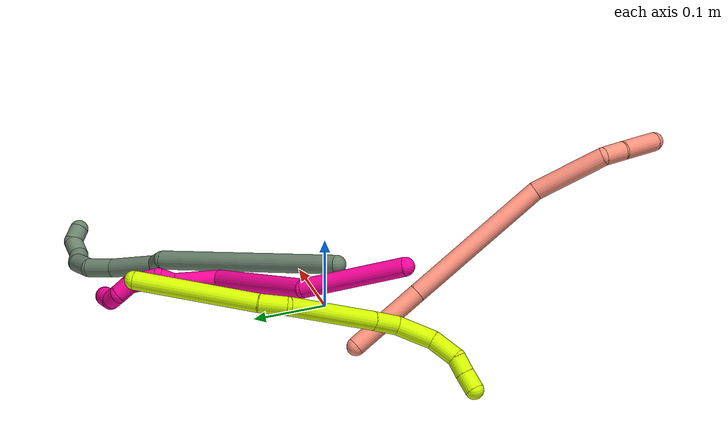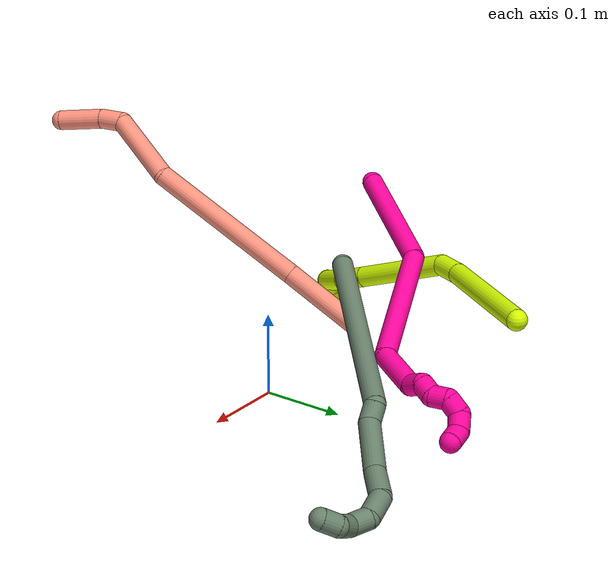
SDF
<sdf version="1.7">
 <world name="default">
  <model name="15">
   <static>0</static>
   <link name="15">
    <collision name="collision-cylinder-e_1_1_4">
     <pose>-0.044882 -0.068134 -0.017127 1.81707 -0.568495 -0.716998</pose>
     <geometry><cylinder><radius>0.0125</radius><length>0.166733</length></cylinder></geometry>
     <surface>
      <friction><ode><mu>1.16</mu><mu2>1.16</mu2><slip1>0</slip1><slip2>0</slip2></ode></friction>
      <contact><ode><kp>1e+06</kp><kd>1</kd><max_vel>0</max_vel><min_depth>0.001</min_depth></ode></contact>
     </surface>
    </collision>
    <visual name="visual-cylinder-e_1_1_4">
     <pose>-0.044882 -0.068134 -0.017127 1.81707 -0.568495 -0.716998</pose>
     <geometry><cylinder><radius>0.0125</radius><length>0.166733</length></cylinder></geometry>
     <material><ambient>0.835294 1 0 1</ambient></material>
    </visual>
    <collision name="collision-cylinder-e_2_4_5">
     <pose>-0.097491 -0.153049 -0.038029 1.79204 -0.422286 -0.523511</pose>
     <geometry><cylinder><radius>0.0125</radius><length>0.037713</length></cylinder></geometry>
     <surface>
      <friction><ode><mu>1.16</mu><mu2>1.16</mu2><slip1>0</slip1><slip2>0</slip2></ode></friction>
      <contact><ode><kp>1e+06</kp><kd>1</kd><max_vel>0</max_vel><min_depth>0.001</min_depth></ode></contact>
     </surface>
    </collision>
    <visual name="visual-cylinder-e_2_4_5">
     <pose>-0.097491 -0.153049 -0.038029 1.79204 -0.422286 -0.523511</pose>
     <geometry><cylinder><radius>0.0125</radius><length>0.037713</length></cylinder></geometry>
     <material><ambient>0.835294 1 0 1</ambient></material>
    </visual>
    <collision name="collision-cylinder-e_3_5_6">
     <pose>-0.102705 -0.224679 -0.069648 2.04055 0.040868 0.066565</pose>
     <geometry><cylinder><radius>0.0125</radius><length>0.123126</length></cylinder></geometry>
     <surface>
      <friction><ode><mu>1.16</mu><mu2>1.16</mu2><slip1>0</slip1><slip2>0</slip2></ode></friction>
      <contact><ode><kp>1e+06</kp><kd>1</kd><max_vel>0</max_vel><min_depth>0.001</min_depth></ode></contact>
     </surface>
    </collision>
    <visual name="visual-cylinder-e_3_5_6">
     <pose>-0.102705 -0.224679 -0.069648 2.04055 0.040868 0.066565</pose>
     <geometry><cylinder><radius>0.0125</radius><length>0.123126</length></cylinder></geometry>
     <material><ambient>0.835294 1 0 1</ambient></material>
    </visual>
    <collision name="collision-cylinder-e_4_6_7">
     <pose>-0.099777 -0.294802 -0.105503 2.05381 0.023898 0.039515</pose>
     <geometry><cylinder><radius>0.0125</radius><length>0.034506</length></cylinder></geometry>
     <surface>
      <friction><ode><mu>1.16</mu><mu2>1.16</mu2><slip1>0</slip1><slip2>0</slip2></ode></friction>
      <contact><ode><kp>1e+06</kp><kd>1</kd><max_vel>0</max_vel><min_depth>0.001</min_depth></ode></contact>
     </surface>
    </collision>
    <visual name="visual-cylinder-e_4_6_7">
     <pose>-0.099777 -0.294802 -0.105503 2.05381 0.023898 0.039515</pose>
     <geometry><cylinder><radius>0.0125</radius><length>0.034506</length></cylinder></geometry>
     <material><ambient>0.835294 1 0 1</ambient></material>
    </visual>
    <collision name="collision-cylinder-e_5_7_8">
     <pose>-0.109259 -0.329858 -0.125738 2.12433 -0.402293 -0.701194</pose>
     <geometry><cylinder><radius>0.0125</radius><length>0.050541</length></cylinder></geometry>
     <surface>
      <friction><ode><mu>1.16</mu><mu2>1.16</mu2><slip1>0</slip1><slip2>0</slip2></ode></friction>
      <contact><ode><kp>1e+06</kp><kd>1</kd><max_vel>0</max_vel><min_depth>0.001</min_depth></ode></contact>
     </surface>
    </collision>
    <visual name="visual-cylinder-e_5_7_8">
     <pose>-0.109259 -0.329858 -0.125738 2.12433 -0.402293 -0.701194</pose>
     <geometry><cylinder><radius>0.0125</radius><length>0.050541</length></cylinder></geometry>
     <material><ambient>0.835294 1 0 1</ambient></material>
    </visual>
    <collision name="collision-cylinder-e_6_8_9">
     <pose>-0.132841 -0.359412 -0.147771 2.35799 -0.779633 -1.56517</pose>
     <geometry><cylinder><radius>0.0125</radius><length>0.03894</length></cylinder></geometry>
     <surface>
      <friction><ode><mu>1.16</mu><mu2>1.16</mu2><slip1>0</slip1><slip2>0</slip2></ode></friction>
      <contact><ode><kp>1e+06</kp><kd>1</kd><max_vel>0</max_vel><min_depth>0.001</min_depth></ode></contact>
     </surface>
    </collision>
    <visual name="visual-cylinder-e_6_8_9">
     <pose>-0.132841 -0.359412 -0.147771 2.35799 -0.779633 -1.56517</pose>
     <geometry><cylinder><radius>0.0125</radius><length>0.03894</length></cylinder></geometry>
     <material><ambient>0.835294 1 0 1</ambient></material>
    </visual>
    <collision name="collision-cylinder-e_7_9_10">
     <pose>-0.154232 -0.371129 -0.166552 2.92823 -0.698146 -2.56931</pose>
     <geometry><cylinder><radius>0.0125</radius><length>0.023969</length></cylinder></geometry>
     <surface>
      <friction><ode><mu>1.16</mu><mu2>1.16</mu2><slip1>0</slip1><slip2>0</slip2></ode></friction>
      <contact><ode><kp>1e+06</kp><kd>1</kd><max_vel>0</max_vel><min_depth>0.001</min_depth></ode></contact>
     </surface>
    </collision>
    <visual name="visual-cylinder-e_7_9_10">
     <pose>-0.154232 -0.371129 -0.166552 2.92823 -0.698146 -2.56931</pose>
     <geometry><cylinder><radius>0.0125</radius><length>0.023969</length></cylinder></geometry>
     <material><ambient>0.835294 1 0 1</ambient></material>
    </visual>
    <collision name="collision-cylinder-e_8_10_2">
     <pose>-0.170116 -0.375466 -0.184304 2.87556 -0.732272 -2.47007</pose>
     <geometry><cylinder><radius>0.0125</radius><length>0.024471</length></cylinder></geometry>
     <surface>
      <friction><ode><mu>1.16</mu><mu2>1.16</mu2><slip1>0</slip1><slip2>0</slip2></ode></friction>
      <contact><ode><kp>1e+06</kp><kd>1</kd><max_vel>0</max_vel><min_depth>0.001</min_depth></ode></contact>
     </surface>
    </collision>
    <visual name="visual-cylinder-e_8_10_2">
     <pose>-0.170116 -0.375466 -0.184304 2.87556 -0.732272 -2.47007</pose>
     <geometry><cylinder><radius>0.0125</radius><length>0.024471</length></cylinder></geometry>
     <material><ambient>0.835294 1 0 1</ambient></material>
    </visual>
    <collision name="collision-sphere-2">
     <pose>-0.178297 -0.377858 -0.193082 0 -0 0</pose>
     <geometry><sphere><radius>0.0125</radius></sphere></geometry>
     <surface>
      <friction><ode><mu>1.16</mu><mu2>1.16</mu2><slip1>0</slip1><slip2>0</slip2></ode></friction>
      <contact><ode><kp>1e+06</kp><kd>1</kd><max_vel>0</max_vel><min_depth>0.001</min_depth></ode></contact>
     </surface>
    </collision>
    <visual name="visual-sphere-2">
     <pose>-0.178297 -0.377858 -0.193082 0 -0 0</pose>
     <geometry><sphere><radius>0.0125</radius></sphere></geometry>
     <material><ambient>0.835294 1 0 1</ambient></material>
    </visual>
    <collision name="collision-sphere-10">
     <pose>-0.161936 -0.373073 -0.175525 0 -0 0</pose>
     <geometry><sphere><radius>0.0125</radius></sphere></geometry>
     <surface>
      <friction><ode><mu>1.16</mu><mu2>1.16</mu2><slip1>0</slip1><slip2>0</slip2></ode></friction>
      <contact><ode><kp>1e+06</kp><kd>1</kd><max_vel>0</max_vel><min_depth>0.001</min_depth></ode></contact>
     </surface>
    </collision>
    <visual name="visual-sphere-10">
     <pose>-0.161936 -0.373073 -0.175525 0 -0 0</pose>
     <geometry><sphere><radius>0.0125</radius></sphere></geometry>
     <material><ambient>0.835294 1 0 1</ambient></material>
    </visual>
    <collision name="collision-sphere-9">
     <pose>-0.146529 -0.369185 -0.157579 0 -0 0</pose>
     <geometry><sphere><radius>0.0125</radius></sphere></geometry>
     <surface>
      <friction><ode><mu>1.16</mu><mu2>1.16</mu2><slip1>0</slip1><slip2>0</slip2></ode></friction>
      <contact><ode><kp>1e+06</kp><kd>1</kd><max_vel>0</max_vel><min_depth>0.001</min_depth></ode></contact>
     </surface>
    </collision>
    <visual name="visual-sphere-9">
     <pose>-0.146529 -0.369185 -0.157579 0 -0 0</pose>
     <geometry><sphere><radius>0.0125</radius></sphere></geometry>
     <material><ambient>0.835294 1 0 1</ambient></material>
    </visual>
    <collision name="collision-sphere-4">
     <pose>-0.089763 -0.136268 -0.034255 0 -0 0</pose>
     <geometry><sphere><radius>0.0125</radius></sphere></geometry>
     <surface>
      <friction><ode><mu>1.16</mu><mu2>1.16</mu2><slip1>0</slip1><slip2>0</slip2></ode></friction>
      <contact><ode><kp>1e+06</kp><kd>1</kd><max_vel>0</max_vel><min_depth>0.001</min_depth></ode></contact>
     </surface>
    </collision>
    <visual name="visual-sphere-4">
     <pose>-0.089763 -0.136268 -0.034255 0 -0 0</pose>
     <geometry><sphere><radius>0.0125</radius></sphere></geometry>
     <material><ambient>0.835294 1 0 1</ambient></material>
    </visual>
    <collision name="collision-sphere-1">
     <geometry><sphere><radius>0.0125</radius></sphere></geometry>
     <surface>
      <friction><ode><mu>1.16</mu><mu2>1.16</mu2><slip1>0</slip1><slip2>0</slip2></ode></friction>
      <contact><ode><kp>1e+06</kp><kd>1</kd><max_vel>0</max_vel><min_depth>0.001</min_depth></ode></contact>
     </surface>
    </collision>
    <visual name="visual-sphere-1">
     <geometry><sphere><radius>0.0125</radius></sphere></geometry>
     <material><ambient>0.835294 1 0 1</ambient></material>
    </visual>
    <collision name="collision-sphere-8">
     <pose>-0.119153 -0.349639 -0.137962 0 -0 0</pose>
     <geometry><sphere><radius>0.0125</radius></sphere></geometry>
     <surface>
      <friction><ode><mu>1.16</mu><mu2>1.16</mu2><slip1>0</slip1><slip2>0</slip2></ode></friction>
      <contact><ode><kp>1e+06</kp><kd>1</kd><max_vel>0</max_vel><min_depth>0.001</min_depth></ode></contact>
     </surface>
    </collision>
    <visual name="visual-sphere-8">
     <pose>-0.119153 -0.349639 -0.137962 0 -0 0</pose>
     <geometry><sphere><radius>0.0125</radius></sphere></geometry>
     <material><ambient>0.835294 1 0 1</ambient></material>
    </visual>
    <collision name="collision-sphere-5">
     <pose>-0.10522 -0.16983 -0.041804 0 -0 0</pose>
     <geometry><sphere><radius>0.0125</radius></sphere></geometry>
     <surface>
      <friction><ode><mu>1.16</mu><mu2>1.16</mu2><slip1>0</slip1><slip2>0</slip2></ode></friction>
      <contact><ode><kp>1e+06</kp><kd>1</kd><max_vel>0</max_vel><min_depth>0.001</min_depth></ode></contact>
     </surface>
    </collision>
    <visual name="visual-sphere-5">
     <pose>-0.10522 -0.16983 -0.041804 0 -0 0</pose>
     <geometry><sphere><radius>0.0125</radius></sphere></geometry>
     <material><ambient>0.835294 1 0 1</ambient></material>
    </visual>
    <collision name="collision-sphere-6">
     <pose>-0.100189 -0.279528 -0.097492 0 -0 0</pose>
     <geometry><sphere><radius>0.0125</radius></sphere></geometry>
     <surface>
      <friction><ode><mu>1.16</mu><mu2>1.16</mu2><slip1>0</slip1><slip2>0</slip2></ode></friction>
      <contact><ode><kp>1e+06</kp><kd>1</kd><max_vel>0</max_vel><min_depth>0.001</min_depth></ode></contact>
     </surface>
    </collision>
    <visual name="visual-sphere-6">
     <pose>-0.100189 -0.279528 -0.097492 0 -0 0</pose>
     <geometry><sphere><radius>0.0125</radius></sphere></geometry>
     <material><ambient>0.835294 1 0 1</ambient></material>
    </visual>
    <collision name="collision-sphere-7">
     <pose>-0.099365 -0.310077 -0.113514 0 -0 0</pose>
     <geometry><sphere><radius>0.0125</radius></sphere></geometry>
     <surface>
      <friction><ode><mu>1.16</mu><mu2>1.16</mu2><slip1>0</slip1><slip2>0</slip2></ode></friction>
      <contact><ode><kp>1e+06</kp><kd>1</kd><max_vel>0</max_vel><min_depth>0.001</min_depth></ode></contact>
     </surface>
    </collision>
    <visual name="visual-sphere-7">
     <pose>-0.099365 -0.310077 -0.113514 0 -0 0</pose>
     <geometry><sphere><radius>0.0125</radius></sphere></geometry>
     <material><ambient>0.835294 1 0 1</ambient></material>
    </visual>
    <inertial>
     <pose>-0.091606 -0.207438 -0.074235 0 -0 0</pose>
     <mass>0.5</mass>
     <inertia>
      <ixx>0.000188</ixx>
      <ixy>0</ixy>
      <ixz>0</ixz>
      <iyy>-0.00026</iyy>
      <iyz>0</iyz>
      <izz>0.000692</izz>
     </inertia>
    </inertial>
   </link>
   <pose>-0.073428 0.288515 0.142129 -0.102275 0.119815 -0.032216</pose>
  </model>
  <model name="16">
   <static>0</static>
   <link name="16">
    <collision name="collision-cylinder-e_1_1_4">
     <pose>0.001138 -0.010771 0.051864 0.204763 0.021488 0.002208</pose>
     <geometry><cylinder><radius>0.0125</radius><length>0.105965</length></cylinder></geometry>
     <surface>
      <friction><ode><mu>1.16</mu><mu2>1.16</mu2><slip1>0</slip1><slip2>0</slip2></ode></friction>
      <contact><ode><kp>1e+06</kp><kd>1</kd><max_vel>0</max_vel><min_depth>0.001</min_depth></ode></contact>
     </surface>
    </collision>
    <visual name="visual-cylinder-e_1_1_4">
     <pose>0.001138 -0.010771 0.051864 0.204763 0.021488 0.002208</pose>
     <geometry><cylinder><radius>0.0125</radius><length>0.105965</length></cylinder></geometry>
     <material><ambient>1 0.576471 0.494118 1</ambient></material>
    </visual>
    <collision name="collision-cylinder-e_2_4_5">
     <pose>0.004749 -0.041227 0.205113 0.19178 0.023933 0.002302</pose>
     <geometry><cylinder><radius>0.0125</radius><length>0.206618</length></cylinder></geometry>
     <surface>
      <friction><ode><mu>1.16</mu><mu2>1.16</mu2><slip1>0</slip1><slip2>0</slip2></ode></friction>
      <contact><ode><kp>1e+06</kp><kd>1</kd><max_vel>0</max_vel><min_depth>0.001</min_depth></ode></contact>
     </surface>
    </collision>
    <visual name="visual-cylinder-e_2_4_5">
     <pose>0.004749 -0.041227 0.205113 0.19178 0.023933 0.002302</pose>
     <geometry><cylinder><radius>0.0125</radius><length>0.206618</length></cylinder></geometry>
     <material><ambient>1 0.576471 0.494118 1</ambient></material>
    </visual>
    <collision name="collision-cylinder-e_3_5_6">
     <pose>0.020134 -0.084337 0.349016 0.503569 0.25998 0.067232</pose>
     <geometry><cylinder><radius>0.0125</radius><length>0.100461</length></cylinder></geometry>
     <surface>
      <friction><ode><mu>1.16</mu><mu2>1.16</mu2><slip1>0</slip1><slip2>0</slip2></ode></friction>
      <contact><ode><kp>1e+06</kp><kd>1</kd><max_vel>0</max_vel><min_depth>0.001</min_depth></ode></contact>
     </surface>
    </collision>
    <visual name="visual-cylinder-e_3_5_6">
     <pose>0.020134 -0.084337 0.349016 0.503569 0.25998 0.067232</pose>
     <geometry><cylinder><radius>0.0125</radius><length>0.100461</length></cylinder></geometry>
     <material><ambient>1 0.576471 0.494118 1</ambient></material>
    </visual>
    <collision name="collision-cylinder-e_4_6_7">
     <pose>0.038919 -0.105535 0.405314 -0.160169 0.398221 -0.032386</pose>
     <geometry><cylinder><radius>0.0125</radius><length>0.030291</length></cylinder></geometry>
     <surface>
      <friction><ode><mu>1.16</mu><mu2>1.16</mu2><slip1>0</slip1><slip2>0</slip2></ode></friction>
      <contact><ode><kp>1e+06</kp><kd>1</kd><max_vel>0</max_vel><min_depth>0.001</min_depth></ode></contact>
     </surface>
    </collision>
    <visual name="visual-cylinder-e_4_6_7">
     <pose>0.038919 -0.105535 0.405314 -0.160169 0.398221 -0.032386</pose>
     <geometry><cylinder><radius>0.0125</radius><length>0.030291</length></cylinder></geometry>
     <material><ambient>1 0.576471 0.494118 1</ambient></material>
    </visual>
    <collision name="collision-cylinder-e_5_7_2">
     <pose>0.054453 -0.092941 0.44363 -0.399829 0.347946 -0.071191</pose>
     <geometry><cylinder><radius>0.0125</radius><length>0.056665</length></cylinder></geometry>
     <surface>
      <friction><ode><mu>1.16</mu><mu2>1.16</mu2><slip1>0</slip1><slip2>0</slip2></ode></friction>
      <contact><ode><kp>1e+06</kp><kd>1</kd><max_vel>0</max_vel><min_depth>0.001</min_depth></ode></contact>
     </surface>
    </collision>
    <visual name="visual-cylinder-e_5_7_2">
     <pose>0.054453 -0.092941 0.44363 -0.399829 0.347946 -0.071191</pose>
     <geometry><cylinder><radius>0.0125</radius><length>0.056665</length></cylinder></geometry>
     <material><ambient>1 0.576471 0.494118 1</ambient></material>
    </visual>
    <collision name="collision-sphere-2">
     <pose>0.064113 -0.082573 0.468164 0 -0 0</pose>
     <geometry><sphere><radius>0.0125</radius></sphere></geometry>
     <surface>
      <friction><ode><mu>1.16</mu><mu2>1.16</mu2><slip1>0</slip1><slip2>0</slip2></ode></friction>
      <contact><ode><kp>1e+06</kp><kd>1</kd><max_vel>0</max_vel><min_depth>0.001</min_depth></ode></contact>
     </surface>
    </collision>
    <visual name="visual-sphere-2">
     <pose>0.064113 -0.082573 0.468164 0 -0 0</pose>
     <geometry><sphere><radius>0.0125</radius></sphere></geometry>
     <material><ambient>1 0.576471 0.494118 1</ambient></material>
    </visual>
    <collision name="collision-sphere-7">
     <pose>0.044792 -0.103309 0.419096 0 -0 0</pose>
     <geometry><sphere><radius>0.0125</radius></sphere></geometry>
     <surface>
      <friction><ode><mu>1.16</mu><mu2>1.16</mu2><slip1>0</slip1><slip2>0</slip2></ode></friction>
      <contact><ode><kp>1e+06</kp><kd>1</kd><max_vel>0</max_vel><min_depth>0.001</min_depth></ode></contact>
     </surface>
    </collision>
    <visual name="visual-sphere-7">
     <pose>0.044792 -0.103309 0.419096 0 -0 0</pose>
     <geometry><sphere><radius>0.0125</radius></sphere></geometry>
     <material><ambient>1 0.576471 0.494118 1</ambient></material>
    </visual>
    <collision name="collision-sphere-6">
     <pose>0.033046 -0.107762 0.391533 0 -0 0</pose>
     <geometry><sphere><radius>0.0125</radius></sphere></geometry>
     <surface>
      <friction><ode><mu>1.16</mu><mu2>1.16</mu2><slip1>0</slip1><slip2>0</slip2></ode></friction>
      <contact><ode><kp>1e+06</kp><kd>1</kd><max_vel>0</max_vel><min_depth>0.001</min_depth></ode></contact>
     </surface>
    </collision>
    <visual name="visual-sphere-6">
     <pose>0.033046 -0.107762 0.391533 0 -0 0</pose>
     <geometry><sphere><radius>0.0125</radius></sphere></geometry>
     <material><ambient>1 0.576471 0.494118 1</ambient></material>
    </visual>
    <collision name="collision-sphere-5">
     <pose>0.007221 -0.060913 0.306499 0 -0 0</pose>
     <geometry><sphere><radius>0.0125</radius></sphere></geometry>
     <surface>
      <friction><ode><mu>1.16</mu><mu2>1.16</mu2><slip1>0</slip1><slip2>0</slip2></ode></friction>
      <contact><ode><kp>1e+06</kp><kd>1</kd><max_vel>0</max_vel><min_depth>0.001</min_depth></ode></contact>
     </surface>
    </collision>
    <visual name="visual-sphere-5">
     <pose>0.007221 -0.060913 0.306499 0 -0 0</pose>
     <geometry><sphere><radius>0.0125</radius></sphere></geometry>
     <material><ambient>1 0.576471 0.494118 1</ambient></material>
    </visual>
    <collision name="collision-sphere-1">
     <geometry><sphere><radius>0.0125</radius></sphere></geometry>
     <surface>
      <friction><ode><mu>1.16</mu><mu2>1.16</mu2><slip1>0</slip1><slip2>0</slip2></ode></friction>
      <contact><ode><kp>1e+06</kp><kd>1</kd><max_vel>0</max_vel><min_depth>0.001</min_depth></ode></contact>
     </surface>
    </collision>
    <visual name="visual-sphere-1">
     <geometry><sphere><radius>0.0125</radius></sphere></geometry>
     <material><ambient>1 0.576471 0.494118 1</ambient></material>
    </visual>
    <collision name="collision-sphere-4">
     <pose>0.002277 -0.021541 0.103727 0 -0 0</pose>
     <geometry><sphere><radius>0.0125</radius></sphere></geometry>
     <surface>
      <friction><ode><mu>1.16</mu><mu2>1.16</mu2><slip1>0</slip1><slip2>0</slip2></ode></friction>
      <contact><ode><kp>1e+06</kp><kd>1</kd><max_vel>0</max_vel><min_depth>0.001</min_depth></ode></contact>
     </surface>
    </collision>
    <visual name="visual-sphere-4">
     <pose>0.002277 -0.021541 0.103727 0 -0 0</pose>
     <geometry><sphere><radius>0.0125</radius></sphere></geometry>
     <material><ambient>1 0.576471 0.494118 1</ambient></material>
    </visual>
    <inertial>
     <pose>0.014778 -0.053191 0.240708 0 -0 0</pose>
     <mass>0.5</mass>
     <inertia>
      <ixx>0.000962</ixx>
      <ixy>0</ixy>
      <ixz>0</ixz>
      <iyy>0.000928</iyy>
      <iyz>0</iyz>
      <izz>0.000184</izz>
     </inertia>
    </inertial>
   </link>
   <pose>-0.159788 0.016392 0.032391 -1.04175 0.698035 -2.44014</pose>
  </model>
  <model name="17">
   <static>0</static>
   <link name="17">
    <collision name="collision-cylinder-e_1_1_4">
     <pose>0.00923 -0.010639 0.131636 0.080646 0.069776 0.002816</pose>
     <geometry><cylinder><radius>0.0125</radius><length>0.264774</length></cylinder></geometry>
     <surface>
      <friction><ode><mu>1.16</mu><mu2>1.16</mu2><slip1>0</slip1><slip2>0</slip2></ode></friction>
      <contact><ode><kp>1e+06</kp><kd>1</kd><max_vel>0</max_vel><min_depth>0.001</min_depth></ode></contact>
     </surface>
    </collision>
    <visual name="visual-cylinder-e_1_1_4">
     <pose>0.00923 -0.010639 0.131636 0.080646 0.069776 0.002816</pose>
     <geometry><cylinder><radius>0.0125</radius><length>0.264774</length></cylinder></geometry>
     <material><ambient>0.415686 0.509804 0.423529 1</ambient></material>
    </visual>
    <collision name="collision-cylinder-e_2_4_5">
     <pose>0.024995 -0.025649 0.271412 0.492773 0.615569 0.159555</pose>
     <geometry><cylinder><radius>0.0125</radius><length>0.022636</length></cylinder></geometry>
     <surface>
      <friction><ode><mu>1.16</mu><mu2>1.16</mu2><slip1>0</slip1><slip2>0</slip2></ode></friction>
      <contact><ode><kp>1e+06</kp><kd>1</kd><max_vel>0</max_vel><min_depth>0.001</min_depth></ode></contact>
     </surface>
    </collision>
    <visual name="visual-cylinder-e_2_4_5">
     <pose>0.024995 -0.025649 0.271412 0.492773 0.615569 0.159555</pose>
     <geometry><cylinder><radius>0.0125</radius><length>0.022636</length></cylinder></geometry>
     <material><ambient>0.415686 0.509804 0.423529 1</ambient></material>
    </visual>
    <collision name="collision-cylinder-e_3_5_6">
     <pose>0.038713 -0.034471 0.314704 0.125924 0.199998 0.012651</pose>
     <geometry><cylinder><radius>0.0125</radius><length>0.072303</length></cylinder></geometry>
     <surface>
      <friction><ode><mu>1.16</mu><mu2>1.16</mu2><slip1>0</slip1><slip2>0</slip2></ode></friction>
      <contact><ode><kp>1e+06</kp><kd>1</kd><max_vel>0</max_vel><min_depth>0.001</min_depth></ode></contact>
     </surface>
    </collision>
    <visual name="visual-cylinder-e_3_5_6">
     <pose>0.038713 -0.034471 0.314704 0.125924 0.199998 0.012651</pose>
     <geometry><cylinder><radius>0.0125</radius><length>0.072303</length></cylinder></geometry>
     <material><ambient>0.415686 0.509804 0.423529 1</ambient></material>
    </visual>
    <collision name="collision-cylinder-e_4_6_7">
     <pose>0.047444 -0.040301 0.369014 0.071915 0.080478 0.002897</pose>
     <geometry><cylinder><radius>0.0125</radius><length>0.038544</length></cylinder></geometry>
     <surface>
      <friction><ode><mu>1.16</mu><mu2>1.16</mu2><slip1>0</slip1><slip2>0</slip2></ode></friction>
      <contact><ode><kp>1e+06</kp><kd>1</kd><max_vel>0</max_vel><min_depth>0.001</min_depth></ode></contact>
     </surface>
    </collision>
    <visual name="visual-cylinder-e_4_6_7">
     <pose>0.047444 -0.040301 0.369014 0.071915 0.080478 0.002897</pose>
     <geometry><cylinder><radius>0.0125</radius><length>0.038544</length></cylinder></geometry>
     <material><ambient>0.415686 0.509804 0.423529 1</ambient></material>
    </visual>
    <collision name="collision-cylinder-e_5_7_8">
     <pose>0.051269 -0.05101 0.401799 0.600375 0.136949 0.042451</pose>
     <geometry><cylinder><radius>0.0125</radius><length>0.033337</length></cylinder></geometry>
     <surface>
      <friction><ode><mu>1.16</mu><mu2>1.16</mu2><slip1>0</slip1><slip2>0</slip2></ode></friction>
      <contact><ode><kp>1e+06</kp><kd>1</kd><max_vel>0</max_vel><min_depth>0.001</min_depth></ode></contact>
     </surface>
    </collision>
    <visual name="visual-cylinder-e_5_7_8">
     <pose>0.051269 -0.05101 0.401799 0.600375 0.136949 0.042451</pose>
     <geometry><cylinder><radius>0.0125</radius><length>0.033337</length></cylinder></geometry>
     <material><ambient>0.415686 0.509804 0.423529 1</ambient></material>
    </visual>
    <collision name="collision-cylinder-e_6_8_9">
     <pose>0.054646 -0.07168 0.419507 1.22521 0.091159 0.064089</pose>
     <geometry><cylinder><radius>0.0125</radius><length>0.02421</length></cylinder></geometry>
     <surface>
      <friction><ode><mu>1.16</mu><mu2>1.16</mu2><slip1>0</slip1><slip2>0</slip2></ode></friction>
      <contact><ode><kp>1e+06</kp><kd>1</kd><max_vel>0</max_vel><min_depth>0.001</min_depth></ode></contact>
     </surface>
    </collision>
    <visual name="visual-cylinder-e_6_8_9">
     <pose>0.054646 -0.07168 0.419507 1.22521 0.091159 0.064089</pose>
     <geometry><cylinder><radius>0.0125</radius><length>0.02421</length></cylinder></geometry>
     <material><ambient>0.415686 0.509804 0.423529 1</ambient></material>
    </visual>
    <collision name="collision-cylinder-e_7_9_10">
     <pose>0.050102 -0.090651 0.430244 0.853559 -0.508798 -0.235396</pose>
     <geometry><cylinder><radius>0.0125</radius><length>0.023182</length></cylinder></geometry>
     <surface>
      <friction><ode><mu>1.16</mu><mu2>1.16</mu2><slip1>0</slip1><slip2>0</slip2></ode></friction>
      <contact><ode><kp>1e+06</kp><kd>1</kd><max_vel>0</max_vel><min_depth>0.001</min_depth></ode></contact>
     </surface>
    </collision>
    <visual name="visual-cylinder-e_7_9_10">
     <pose>0.050102 -0.090651 0.430244 0.853559 -0.508798 -0.235396</pose>
     <geometry><cylinder><radius>0.0125</radius><length>0.023182</length></cylinder></geometry>
     <material><ambient>0.415686 0.509804 0.423529 1</ambient></material>
    </visual>
    <collision name="collision-cylinder-e_8_10_2">
     <pose>0.040297 -0.107864 0.43578 1.68698 -0.406909 -0.455532</pose>
     <geometry><cylinder><radius>0.0125</radius><length>0.021014</length></cylinder></geometry>
     <surface>
      <friction><ode><mu>1.16</mu><mu2>1.16</mu2><slip1>0</slip1><slip2>0</slip2></ode></friction>
      <contact><ode><kp>1e+06</kp><kd>1</kd><max_vel>0</max_vel><min_depth>0.001</min_depth></ode></contact>
     </surface>
    </collision>
    <visual name="visual-cylinder-e_8_10_2">
     <pose>0.040297 -0.107864 0.43578 1.68698 -0.406909 -0.455532</pose>
     <geometry><cylinder><radius>0.0125</radius><length>0.021014</length></cylinder></geometry>
     <material><ambient>0.415686 0.509804 0.423529 1</ambient></material>
    </visual>
    <collision name="collision-sphere-2">
     <pose>0.036139 -0.117448 0.434661 0 -0 0</pose>
     <geometry><sphere><radius>0.0125</radius></sphere></geometry>
     <surface>
      <friction><ode><mu>1.16</mu><mu2>1.16</mu2><slip1>0</slip1><slip2>0</slip2></ode></friction>
      <contact><ode><kp>1e+06</kp><kd>1</kd><max_vel>0</max_vel><min_depth>0.001</min_depth></ode></contact>
     </surface>
    </collision>
    <visual name="visual-sphere-2">
     <pose>0.036139 -0.117448 0.434661 0 -0 0</pose>
     <geometry><sphere><radius>0.0125</radius></sphere></geometry>
     <material><ambient>0.415686 0.509804 0.423529 1</ambient></material>
    </visual>
    <collision name="collision-sphere-10">
     <pose>0.044456 -0.09828 0.436898 0 -0 0</pose>
     <geometry><sphere><radius>0.0125</radius></sphere></geometry>
     <surface>
      <friction><ode><mu>1.16</mu><mu2>1.16</mu2><slip1>0</slip1><slip2>0</slip2></ode></friction>
      <contact><ode><kp>1e+06</kp><kd>1</kd><max_vel>0</max_vel><min_depth>0.001</min_depth></ode></contact>
     </surface>
    </collision>
    <visual name="visual-sphere-10">
     <pose>0.044456 -0.09828 0.436898 0 -0 0</pose>
     <geometry><sphere><radius>0.0125</radius></sphere></geometry>
     <material><ambient>0.415686 0.509804 0.423529 1</ambient></material>
    </visual>
    <collision name="collision-sphere-9">
     <pose>0.055748 -0.083022 0.423591 0 -0 0</pose>
     <geometry><sphere><radius>0.0125</radius></sphere></geometry>
     <surface>
      <friction><ode><mu>1.16</mu><mu2>1.16</mu2><slip1>0</slip1><slip2>0</slip2></ode></friction>
      <contact><ode><kp>1e+06</kp><kd>1</kd><max_vel>0</max_vel><min_depth>0.001</min_depth></ode></contact>
     </surface>
    </collision>
    <visual name="visual-sphere-9">
     <pose>0.055748 -0.083022 0.423591 0 -0 0</pose>
     <geometry><sphere><radius>0.0125</radius></sphere></geometry>
     <material><ambient>0.415686 0.509804 0.423529 1</ambient></material>
    </visual>
    <collision name="collision-sphere-4">
     <pose>0.01846 -0.021278 0.263271 0 -0 0</pose>
     <geometry><sphere><radius>0.0125</radius></sphere></geometry>
     <surface>
      <friction><ode><mu>1.16</mu><mu2>1.16</mu2><slip1>0</slip1><slip2>0</slip2></ode></friction>
      <contact><ode><kp>1e+06</kp><kd>1</kd><max_vel>0</max_vel><min_depth>0.001</min_depth></ode></contact>
     </surface>
    </collision>
    <visual name="visual-sphere-4">
     <pose>0.01846 -0.021278 0.263271 0 -0 0</pose>
     <geometry><sphere><radius>0.0125</radius></sphere></geometry>
     <material><ambient>0.415686 0.509804 0.423529 1</ambient></material>
    </visual>
    <collision name="collision-sphere-1">
     <geometry><sphere><radius>0.0125</radius></sphere></geometry>
     <surface>
      <friction><ode><mu>1.16</mu><mu2>1.16</mu2><slip1>0</slip1><slip2>0</slip2></ode></friction>
      <contact><ode><kp>1e+06</kp><kd>1</kd><max_vel>0</max_vel><min_depth>0.001</min_depth></ode></contact>
     </surface>
    </collision>
    <visual name="visual-sphere-1">
     <geometry><sphere><radius>0.0125</radius></sphere></geometry>
     <material><ambient>0.415686 0.509804 0.423529 1</ambient></material>
    </visual>
    <collision name="collision-sphere-8">
     <pose>0.053545 -0.060338 0.415424 0 -0 0</pose>
     <geometry><sphere><radius>0.0125</radius></sphere></geometry>
     <surface>
      <friction><ode><mu>1.16</mu><mu2>1.16</mu2><slip1>0</slip1><slip2>0</slip2></ode></friction>
      <contact><ode><kp>1e+06</kp><kd>1</kd><max_vel>0</max_vel><min_depth>0.001</min_depth></ode></contact>
     </surface>
    </collision>
    <visual name="visual-sphere-8">
     <pose>0.053545 -0.060338 0.415424 0 -0 0</pose>
     <geometry><sphere><radius>0.0125</radius></sphere></geometry>
     <material><ambient>0.415686 0.509804 0.423529 1</ambient></material>
    </visual>
    <collision name="collision-sphere-5">
     <pose>0.03153 -0.030021 0.279554 0 -0 0</pose>
     <geometry><sphere><radius>0.0125</radius></sphere></geometry>
     <surface>
      <friction><ode><mu>1.16</mu><mu2>1.16</mu2><slip1>0</slip1><slip2>0</slip2></ode></friction>
      <contact><ode><kp>1e+06</kp><kd>1</kd><max_vel>0</max_vel><min_depth>0.001</min_depth></ode></contact>
     </surface>
    </collision>
    <visual name="visual-sphere-5">
     <pose>0.03153 -0.030021 0.279554 0 -0 0</pose>
     <geometry><sphere><radius>0.0125</radius></sphere></geometry>
     <material><ambient>0.415686 0.509804 0.423529 1</ambient></material>
    </visual>
    <collision name="collision-sphere-6">
     <pose>0.045895 -0.038921 0.349854 0 -0 0</pose>
     <geometry><sphere><radius>0.0125</radius></sphere></geometry>
     <surface>
      <friction><ode><mu>1.16</mu><mu2>1.16</mu2><slip1>0</slip1><slip2>0</slip2></ode></friction>
      <contact><ode><kp>1e+06</kp><kd>1</kd><max_vel>0</max_vel><min_depth>0.001</min_depth></ode></contact>
     </surface>
    </collision>
    <visual name="visual-sphere-6">
     <pose>0.045895 -0.038921 0.349854 0 -0 0</pose>
     <geometry><sphere><radius>0.0125</radius></sphere></geometry>
     <material><ambient>0.415686 0.509804 0.423529 1</ambient></material>
    </visual>
    <collision name="collision-sphere-7">
     <pose>0.048993 -0.041681 0.388174 0 -0 0</pose>
     <geometry><sphere><radius>0.0125</radius></sphere></geometry>
     <surface>
      <friction><ode><mu>1.16</mu><mu2>1.16</mu2><slip1>0</slip1><slip2>0</slip2></ode></friction>
      <contact><ode><kp>1e+06</kp><kd>1</kd><max_vel>0</max_vel><min_depth>0.001</min_depth></ode></contact>
     </surface>
    </collision>
    <visual name="visual-sphere-7">
     <pose>0.048993 -0.041681 0.388174 0 -0 0</pose>
     <geometry><sphere><radius>0.0125</radius></sphere></geometry>
     <material><ambient>0.415686 0.509804 0.423529 1</ambient></material>
    </visual>
    <inertial>
     <pose>0.025356 -0.030495 0.241314 0 -0 0</pose>
     <mass>0.5</mass>
     <inertia>
      <ixx>0.001611</ixx>
      <ixy>0</ixy>
      <ixz>0</ixz>
      <iyy>0.001595</iyy>
      <iyz>0</iyz>
      <izz>5.5e-05</izz>
     </inertia>
    </inertial>
   </link>
   <pose>-0.113293 0.025573 0.132071 -2.83937 1.39759 -1.9972</pose>
  </model>
  <model name="18">
   <static>0</static>
   <link name="18">
    <collision name="collision-cylinder-e_1_1_4">
     <pose>0.048161 0.049873 -0.01755 -1.90915 0.738823 -1.00062</pose>
     <geometry><cylinder><radius>0.0125</radius><length>0.143035</length></cylinder></geometry>
     <surface>
      <friction><ode><mu>1.16</mu><mu2>1.16</mu2><slip1>0</slip1><slip2>0</slip2></ode></friction>
      <contact><ode><kp>1e+06</kp><kd>1</kd><max_vel>0</max_vel><min_depth>0.001</min_depth></ode></contact>
     </surface>
    </collision>
    <visual name="visual-cylinder-e_1_1_4">
     <pose>0.048161 0.049873 -0.01755 -1.90915 0.738823 -1.00062</pose>
     <geometry><cylinder><radius>0.0125</radius><length>0.143035</length></cylinder></geometry>
     <material><ambient>1 0.007843 0.615686 1</ambient></material>
    </visual>
    <collision name="collision-cylinder-e_2_4_5">
     <pose>0.174825 0.132742 -0.023161 -1.22366 1.15044 -0.853869</pose>
     <geometry><cylinder><radius>0.0125</radius><length>0.171977</length></cylinder></geometry>
     <surface>
      <friction><ode><mu>1.16</mu><mu2>1.16</mu2><slip1>0</slip1><slip2>0</slip2></ode></friction>
      <contact><ode><kp>1e+06</kp><kd>1</kd><max_vel>0</max_vel><min_depth>0.001</min_depth></ode></contact>
     </surface>
    </collision>
    <visual name="visual-cylinder-e_2_4_5">
     <pose>0.174825 0.132742 -0.023161 -1.22366 1.15044 -0.853869</pose>
     <geometry><cylinder><radius>0.0125</radius><length>0.171977</length></cylinder></geometry>
     <material><ambient>1 0.007843 0.615686 1</ambient></material>
    </visual>
    <collision name="collision-cylinder-e_3_5_6">
     <pose>0.269688 0.191596 -0.016702 -1.7796 0.554279 -0.675224</pose>
     <geometry><cylinder><radius>0.0125</radius><length>0.062169</length></cylinder></geometry>
     <surface>
      <friction><ode><mu>1.16</mu><mu2>1.16</mu2><slip1>0</slip1><slip2>0</slip2></ode></friction>
      <contact><ode><kp>1e+06</kp><kd>1</kd><max_vel>0</max_vel><min_depth>0.001</min_depth></ode></contact>
     </surface>
    </collision>
    <visual name="visual-cylinder-e_3_5_6">
     <pose>0.269688 0.191596 -0.016702 -1.7796 0.554279 -0.675224</pose>
     <geometry><cylinder><radius>0.0125</radius><length>0.062169</length></cylinder></geometry>
     <material><ambient>1 0.007843 0.615686 1</ambient></material>
    </visual>
    <collision name="collision-cylinder-e_4_6_7">
     <pose>0.286321 0.228624 -0.02095 -1.46107 0.024256 -0.021731</pose>
     <geometry><cylinder><radius>0.0125</radius><length>0.022485</length></cylinder></geometry>
     <surface>
      <friction><ode><mu>1.16</mu><mu2>1.16</mu2><slip1>0</slip1><slip2>0</slip2></ode></friction>
      <contact><ode><kp>1e+06</kp><kd>1</kd><max_vel>0</max_vel><min_depth>0.001</min_depth></ode></contact>
     </surface>
    </collision>
    <visual name="visual-cylinder-e_4_6_7">
     <pose>0.286321 0.228624 -0.02095 -1.46107 0.024256 -0.021731</pose>
     <geometry><cylinder><radius>0.0125</radius><length>0.022485</length></cylinder></geometry>
     <material><ambient>1 0.007843 0.615686 1</ambient></material>
    </visual>
    <collision name="collision-cylinder-e_5_7_8">
     <pose>0.292225 0.247511 -0.022929 -1.9651 0.592979 -0.858972</pose>
     <geometry><cylinder><radius>0.0125</radius><length>0.020153</length></cylinder></geometry>
     <surface>
      <friction><ode><mu>1.16</mu><mu2>1.16</mu2><slip1>0</slip1><slip2>0</slip2></ode></friction>
      <contact><ode><kp>1e+06</kp><kd>1</kd><max_vel>0</max_vel><min_depth>0.001</min_depth></ode></contact>
     </surface>
    </collision>
    <visual name="visual-cylinder-e_5_7_8">
     <pose>0.292225 0.247511 -0.022929 -1.9651 0.592979 -0.858972</pose>
     <geometry><cylinder><radius>0.0125</radius><length>0.020153</length></cylinder></geometry>
     <material><ambient>1 0.007843 0.615686 1</ambient></material>
    </visual>
    <collision name="collision-cylinder-e_6_8_9">
     <pose>0.297328 0.264258 -0.030579 -2.02766 -0.052416 0.084139</pose>
     <geometry><cylinder><radius>0.0125</radius><length>0.020156</length></cylinder></geometry>
     <surface>
      <friction><ode><mu>1.16</mu><mu2>1.16</mu2><slip1>0</slip1><slip2>0</slip2></ode></friction>
      <contact><ode><kp>1e+06</kp><kd>1</kd><max_vel>0</max_vel><min_depth>0.001</min_depth></ode></contact>
     </surface>
    </collision>
    <visual name="visual-cylinder-e_6_8_9">
     <pose>0.297328 0.264258 -0.030579 -2.02766 -0.052416 0.084139</pose>
     <geometry><cylinder><radius>0.0125</radius><length>0.020156</length></cylinder></geometry>
     <material><ambient>1 0.007843 0.615686 1</ambient></material>
    </visual>
    <collision name="collision-cylinder-e_7_9_10">
     <pose>0.301657 0.278351 -0.042154 -2.52468 0.506783 -1.3649</pose>
     <geometry><cylinder><radius>0.0125</radius><length>0.020013</length></cylinder></geometry>
     <surface>
      <friction><ode><mu>1.16</mu><mu2>1.16</mu2><slip1>0</slip1><slip2>0</slip2></ode></friction>
      <contact><ode><kp>1e+06</kp><kd>1</kd><max_vel>0</max_vel><min_depth>0.001</min_depth></ode></contact>
     </surface>
    </collision>
    <visual name="visual-cylinder-e_7_9_10">
     <pose>0.301657 0.278351 -0.042154 -2.52468 0.506783 -1.3649</pose>
     <geometry><cylinder><radius>0.0125</radius><length>0.020013</length></cylinder></geometry>
     <material><ambient>1 0.007843 0.615686 1</ambient></material>
    </visual>
    <collision name="collision-cylinder-e_8_10_11">
     <pose>0.315899 0.28525 -0.052221 -2.58142 1.2176 -2.35893</pose>
     <geometry><cylinder><radius>0.0125</radius><length>0.020006</length></cylinder></geometry>
     <surface>
      <friction><ode><mu>1.16</mu><mu2>1.16</mu2><slip1>0</slip1><slip2>0</slip2></ode></friction>
      <contact><ode><kp>1e+06</kp><kd>1</kd><max_vel>0</max_vel><min_depth>0.001</min_depth></ode></contact>
     </surface>
    </collision>
    <visual name="visual-cylinder-e_8_10_11">
     <pose>0.315899 0.28525 -0.052221 -2.58142 1.2176 -2.35893</pose>
     <geometry><cylinder><radius>0.0125</radius><length>0.020006</length></cylinder></geometry>
     <material><ambient>1 0.007843 0.615686 1</ambient></material>
    </visual>
    <collision name="collision-cylinder-e_9_11_2">
     <pose>0.334258 0.289312 -0.05133 -0.52679 1.11295 -0.332389</pose>
     <geometry><cylinder><radius>0.0125</radius><length>0.020008</length></cylinder></geometry>
     <surface>
      <friction><ode><mu>1.16</mu><mu2>1.16</mu2><slip1>0</slip1><slip2>0</slip2></ode></friction>
      <contact><ode><kp>1e+06</kp><kd>1</kd><max_vel>0</max_vel><min_depth>0.001</min_depth></ode></contact>
     </surface>
    </collision>
    <visual name="visual-cylinder-e_9_11_2">
     <pose>0.334258 0.289312 -0.05133 -0.52679 1.11295 -0.332389</pose>
     <geometry><cylinder><radius>0.0125</radius><length>0.020008</length></cylinder></geometry>
     <material><ambient>1 0.007843 0.615686 1</ambient></material>
    </visual>
    <collision name="collision-sphere-2">
     <pose>0.343231 0.291535 -0.047508 0 -0 0</pose>
     <geometry><sphere><radius>0.0125</radius></sphere></geometry>
     <surface>
      <friction><ode><mu>1.16</mu><mu2>1.16</mu2><slip1>0</slip1><slip2>0</slip2></ode></friction>
      <contact><ode><kp>1e+06</kp><kd>1</kd><max_vel>0</max_vel><min_depth>0.001</min_depth></ode></contact>
     </surface>
    </collision>
    <visual name="visual-sphere-2">
     <pose>0.343231 0.291535 -0.047508 0 -0 0</pose>
     <geometry><sphere><radius>0.0125</radius></sphere></geometry>
     <material><ambient>1 0.007843 0.615686 1</ambient></material>
    </visual>
    <collision name="collision-sphere-11">
     <pose>0.325284 0.287089 -0.055153 0 -0 0</pose>
     <geometry><sphere><radius>0.0125</radius></sphere></geometry>
     <surface>
      <friction><ode><mu>1.16</mu><mu2>1.16</mu2><slip1>0</slip1><slip2>0</slip2></ode></friction>
      <contact><ode><kp>1e+06</kp><kd>1</kd><max_vel>0</max_vel><min_depth>0.001</min_depth></ode></contact>
     </surface>
    </collision>
    <visual name="visual-sphere-11">
     <pose>0.325284 0.287089 -0.055153 0 -0 0</pose>
     <geometry><sphere><radius>0.0125</radius></sphere></geometry>
     <material><ambient>1 0.007843 0.615686 1</ambient></material>
    </visual>
    <collision name="collision-sphere-10">
     <pose>0.306514 0.283412 -0.04929 0 -0 0</pose>
     <geometry><sphere><radius>0.0125</radius></sphere></geometry>
     <surface>
      <friction><ode><mu>1.16</mu><mu2>1.16</mu2><slip1>0</slip1><slip2>0</slip2></ode></friction>
      <contact><ode><kp>1e+06</kp><kd>1</kd><max_vel>0</max_vel><min_depth>0.001</min_depth></ode></contact>
     </surface>
    </collision>
    <visual name="visual-sphere-10">
     <pose>0.306514 0.283412 -0.04929 0 -0 0</pose>
     <geometry><sphere><radius>0.0125</radius></sphere></geometry>
     <material><ambient>1 0.007843 0.615686 1</ambient></material>
    </visual>
    <collision name="collision-sphere-9">
     <pose>0.2968 0.273289 -0.035018 0 -0 0</pose>
     <geometry><sphere><radius>0.0125</radius></sphere></geometry>
     <surface>
      <friction><ode><mu>1.16</mu><mu2>1.16</mu2><slip1>0</slip1><slip2>0</slip2></ode></friction>
      <contact><ode><kp>1e+06</kp><kd>1</kd><max_vel>0</max_vel><min_depth>0.001</min_depth></ode></contact>
     </surface>
    </collision>
    <visual name="visual-sphere-9">
     <pose>0.2968 0.273289 -0.035018 0 -0 0</pose>
     <geometry><sphere><radius>0.0125</radius></sphere></geometry>
     <material><ambient>1 0.007843 0.615686 1</ambient></material>
    </visual>
    <collision name="collision-sphere-4">
     <pose>0.096322 0.099745 -0.035099 0 -0 0</pose>
     <geometry><sphere><radius>0.0125</radius></sphere></geometry>
     <surface>
      <friction><ode><mu>1.16</mu><mu2>1.16</mu2><slip1>0</slip1><slip2>0</slip2></ode></friction>
      <contact><ode><kp>1e+06</kp><kd>1</kd><max_vel>0</max_vel><min_depth>0.001</min_depth></ode></contact>
     </surface>
    </collision>
    <visual name="visual-sphere-4">
     <pose>0.096322 0.099745 -0.035099 0 -0 0</pose>
     <geometry><sphere><radius>0.0125</radius></sphere></geometry>
     <material><ambient>1 0.007843 0.615686 1</ambient></material>
    </visual>
    <collision name="collision-sphere-1">
     <geometry><sphere><radius>0.0125</radius></sphere></geometry>
     <surface>
      <friction><ode><mu>1.16</mu><mu2>1.16</mu2><slip1>0</slip1><slip2>0</slip2></ode></friction>
      <contact><ode><kp>1e+06</kp><kd>1</kd><max_vel>0</max_vel><min_depth>0.001</min_depth></ode></contact>
     </surface>
    </collision>
    <visual name="visual-sphere-1">
     <geometry><sphere><radius>0.0125</radius></sphere></geometry>
     <material><ambient>1 0.007843 0.615686 1</ambient></material>
    </visual>
    <collision name="collision-sphere-8">
     <pose>0.297856 0.255226 -0.026139 0 -0 0</pose>
     <geometry><sphere><radius>0.0125</radius></sphere></geometry>
     <surface>
      <friction><ode><mu>1.16</mu><mu2>1.16</mu2><slip1>0</slip1><slip2>0</slip2></ode></friction>
      <contact><ode><kp>1e+06</kp><kd>1</kd><max_vel>0</max_vel><min_depth>0.001</min_depth></ode></contact>
     </surface>
    </collision>
    <visual name="visual-sphere-8">
     <pose>0.297856 0.255226 -0.026139 0 -0 0</pose>
     <geometry><sphere><radius>0.0125</radius></sphere></geometry>
     <material><ambient>1 0.007843 0.615686 1</ambient></material>
    </visual>
    <collision name="collision-sphere-5">
     <pose>0.253327 0.16574 -0.011223 0 -0 0</pose>
     <geometry><sphere><radius>0.0125</radius></sphere></geometry>
     <surface>
      <friction><ode><mu>1.16</mu><mu2>1.16</mu2><slip1>0</slip1><slip2>0</slip2></ode></friction>
      <contact><ode><kp>1e+06</kp><kd>1</kd><max_vel>0</max_vel><min_depth>0.001</min_depth></ode></contact>
     </surface>
    </collision>
    <visual name="visual-sphere-5">
     <pose>0.253327 0.16574 -0.011223 0 -0 0</pose>
     <geometry><sphere><radius>0.0125</radius></sphere></geometry>
     <material><ambient>1 0.007843 0.615686 1</ambient></material>
    </visual>
    <collision name="collision-sphere-6">
     <pose>0.286049 0.217453 -0.022181 0 -0 0</pose>
     <geometry><sphere><radius>0.0125</radius></sphere></geometry>
     <surface>
      <friction><ode><mu>1.16</mu><mu2>1.16</mu2><slip1>0</slip1><slip2>0</slip2></ode></friction>
      <contact><ode><kp>1e+06</kp><kd>1</kd><max_vel>0</max_vel><min_depth>0.001</min_depth></ode></contact>
     </surface>
    </collision>
    <visual name="visual-sphere-6">
     <pose>0.286049 0.217453 -0.022181 0 -0 0</pose>
     <geometry><sphere><radius>0.0125</radius></sphere></geometry>
     <material><ambient>1 0.007843 0.615686 1</ambient></material>
    </visual>
    <collision name="collision-sphere-7">
     <pose>0.286594 0.239796 -0.019719 0 -0 0</pose>
     <geometry><sphere><radius>0.0125</radius></sphere></geometry>
     <surface>
      <friction><ode><mu>1.16</mu><mu2>1.16</mu2><slip1>0</slip1><slip2>0</slip2></ode></friction>
      <contact><ode><kp>1e+06</kp><kd>1</kd><max_vel>0</max_vel><min_depth>0.001</min_depth></ode></contact>
     </surface>
    </collision>
    <visual name="visual-sphere-7">
     <pose>0.286594 0.239796 -0.019719 0 -0 0</pose>
     <geometry><sphere><radius>0.0125</radius></sphere></geometry>
     <material><ambient>1 0.007843 0.615686 1</ambient></material>
    </visual>
    <inertial>
     <pose>0.18217 0.148788 -0.023993 0 -0 0</pose>
     <mass>0.5</mass>
     <inertia>
      <ixx>-4.1e-05</ixx>
      <ixy>0</ixy>
      <ixz>0</ixz>
      <iyy>0.00019</iyy>
      <iyz>0</iyz>
      <izz>-0.000944</izz>
     </inertia>
    </inertial>
   </link>
   <pose>-0.241022 -0.019456 0.1904 0.448835 0.664491 0.079619</pose>
  </model>
 </world>
</sdf>
